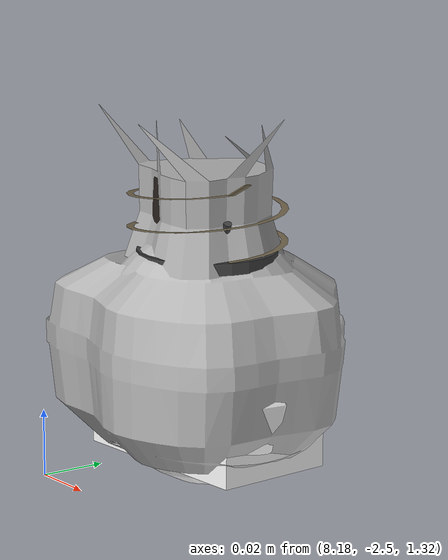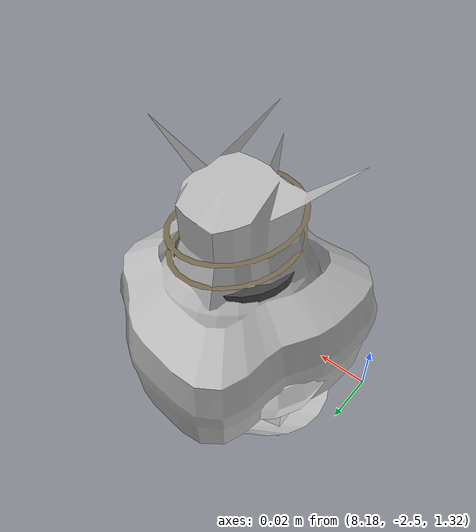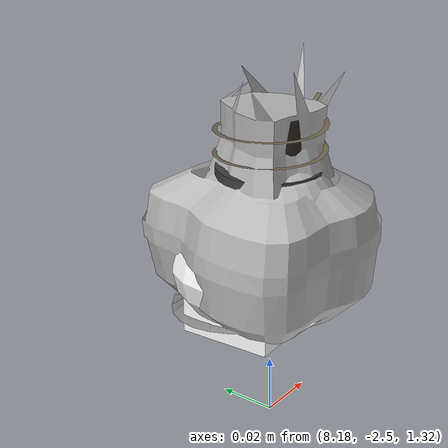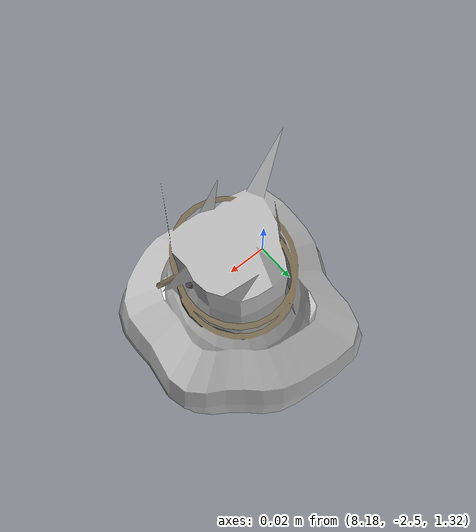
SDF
<sdf version="1.11">
 <world name="peach_orchard">
  <model name="ground">
   <static>true</static>
   <link name="link">
    <visual name="soil">
     <geometry><plane><normal>0 0 1</normal><size>32 22</size></plane></geometry>
     <material>
      <ambient>1 1 1 1</ambient>
      <diffuse>1 1 1 1</diffuse>
      <specular>0.1 0.1 0.1 1</specular>
      <pbr>
       <metal>
        <albedo_map>textures/soil_albedo.png</albedo_map>
        <normal_map type="tangent">textures/soil_normal.png</normal_map>
        <roughness>0.95</roughness>
        <metalness>0</metalness>
       </metal>
      </pbr>
     </material>
    </visual>
    <collision name="c_soil">
     <geometry><plane><normal>0 0 1</normal><size>32 22</size></plane></geometry>
    </collision>
   </link>
  </model>
  <model name="peach_tree_r4_t2_04">
   <pose>8.22 -2.46926 1.33007 0 0.0200719 -0.273436</pose>
   <static>true</static>
   <link name="bag">
    <visual name="bag_mesh">
     <pose>0 0 0.0427694 0 0 -0</pose>
     <geometry>
      <mesh><uri>model://peach_sim/meshes/bagged_peach.glb</uri><scale>1.0476 1.21303 0.972032</scale></mesh>
     </geometry>
    </visual>
    <visual name="body">
     <pose>0 0 0.0247694 0 0 0</pose>
     <geometry><ellipsoid><radii>0.0392849 0.0315387 0.0267509</radii></ellipsoid></geometry>
     <material>
      <ambient>1 1 1 1</ambient>
      <diffuse>1 1 1 1</diffuse>
      <specular>0.1 0.1 0.1 1</specular>
      <pbr>
       <metal>
        <albedo_map>textures/paper_bag_albedo.png</albedo_map>
        <normal_map type="tangent">textures/paper_bag_normal.png</normal_map>
        <roughness>0.72</roughness>
        <metalness>0</metalness>
       </metal>
      </pbr>
     </material>
    </visual>
    <visual name="bottom_fold">
     <pose>0 0 0.012 0 0 0.35</pose>
     <geometry><box><size>0.0608915 0.0362695 0.022</size></box></geometry>
     <material>
      <ambient>1 1 1 1</ambient>
      <diffuse>1 1 1 1</diffuse>
      <specular>0.1 0.1 0.1 1</specular>
      <pbr>
       <metal>
        <albedo_map>textures/paper_bag_albedo.png</albedo_map>
        <normal_map type="tangent">textures/paper_bag_normal.png</normal_map>
        <roughness>0.8</roughness>
        <metalness>0</metalness>
       </metal>
      </pbr>
     </material>
    </visual>
    <visual name="fruit">
     <pose>0 0 0.021427 0 0 0</pose>
     <geometry><sphere><radius>0.0285241</radius></sphere></geometry>
     <material>
      <ambient>1 1 1 1</ambient>
      <diffuse>1 1 1 1</diffuse>
      <specular>0.1 0.1 0.1 1</specular>
      <pbr>
       <metal>
        <albedo_map>textures/fruit_skin_albedo.png</albedo_map>
        <normal_map type="tangent">textures/fruit_skin_normal.png</normal_map>
        <roughness>0.55</roughness>
        <metalness>0</metalness>
       </metal>
      </pbr>
     </material>
    </visual>
    <visual name="neck">
     <pose>0 0 0.0585388 0 0 0</pose>
     <geometry><cylinder><radius>0.013</radius><length>0.018</length></cylinder></geometry>
     <material>
      <ambient>1 1 1 1</ambient>
      <diffuse>1 1 1 1</diffuse>
      <specular>0.1 0.1 0.1 1</specular>
      <pbr>
       <metal>
        <albedo_map>textures/paper_bag_albedo.png</albedo_map>
        <normal_map type="tangent">textures/paper_bag_normal.png</normal_map>
        <roughness>0.75</roughness>
        <metalness>0</metalness>
       </metal>
      </pbr>
     </material>
    </visual>
    <visual name="gather">
     <pose>0 0 0.0395388 0 0 0</pose>
     <geometry><cylinder><radius>0.019</radius><length>0.02</length></cylinder></geometry>
     <material>
      <ambient>1 1 1 1</ambient>
      <diffuse>1 1 1 1</diffuse>
      <specular>0.1 0.1 0.1 1</specular>
      <pbr>
       <metal>
        <albedo_map>textures/paper_bag_albedo.png</albedo_map>
        <normal_map type="tangent">textures/paper_bag_normal.png</normal_map>
        <roughness>0.8</roughness>
        <metalness>0</metalness>
       </metal>
      </pbr>
     </material>
    </visual>
    <visual name="inner_paper">
     <pose>0 0 0.0635388 0 0 0</pose>
     <geometry><cylinder><radius>0.01</radius><length>0.008</length></cylinder></geometry>
     <material>
      <ambient>0.180392 0.14902 0.133333 1</ambient>
      <diffuse>0.180392 0.14902 0.133333 1</diffuse>
      <specular>0.1 0.1 0.1 1</specular>
     </material>
    </visual>
    <visual name="wire_0">
     <pose>0 0 0.0535388 0 0 0</pose>
     <geometry><cylinder><radius>0.0205</radius><length>0.0035</length></cylinder></geometry>
     <material>
      <ambient>0.25 0.25 0.25 1</ambient>
      <diffuse>0.25 0.25 0.25 1</diffuse>
      <specular>0.1 0.1 0.1 1</specular>
     </material>
    </visual>
    <visual name="wire_1">
     <pose>0 0 0.0605388 0 0 0</pose>
     <geometry><cylinder><radius>0.0205</radius><length>0.0035</length></cylinder></geometry>
     <material>
      <ambient>0.25 0.25 0.25 1</ambient>
      <diffuse>0.25 0.25 0.25 1</diffuse>
      <specular>0.1 0.1 0.1 1</specular>
     </material>
    </visual>
    <visual name="wire_tail">
     <pose>0.01 0 0.0615388 0 0.521618 0</pose>
     <geometry><cylinder><radius>0.0012</radius><length>0.026</length></cylinder></geometry>
     <material>
      <ambient>0.25 0.25 0.25 1</ambient>
      <diffuse>0.25 0.25 0.25 1</diffuse>
      <specular>0.1 0.1 0.1 1</specular>
     </material>
    </visual>
    <collision name="c_body">
     <pose>0 0 0.0247694 0 0 0</pose>
     <geometry><cylinder><radius>0.0392849</radius><length>0.0495388</length></cylinder></geometry>
    </collision>
   </link>
  </model>
 </world>
</sdf>
